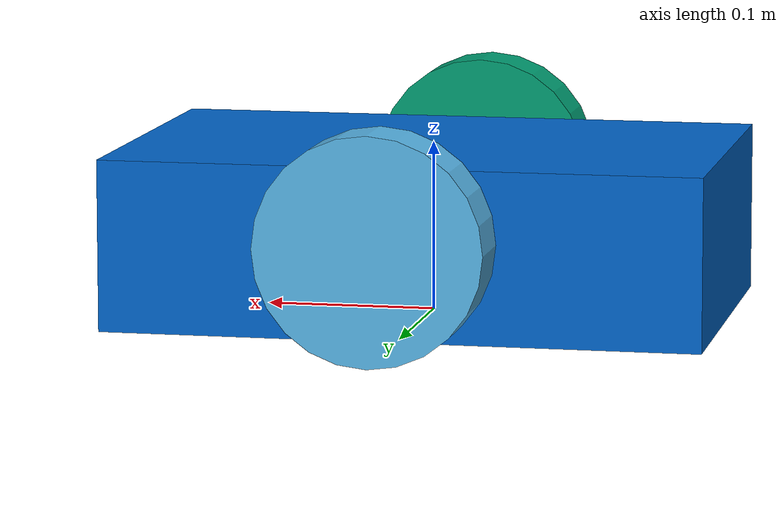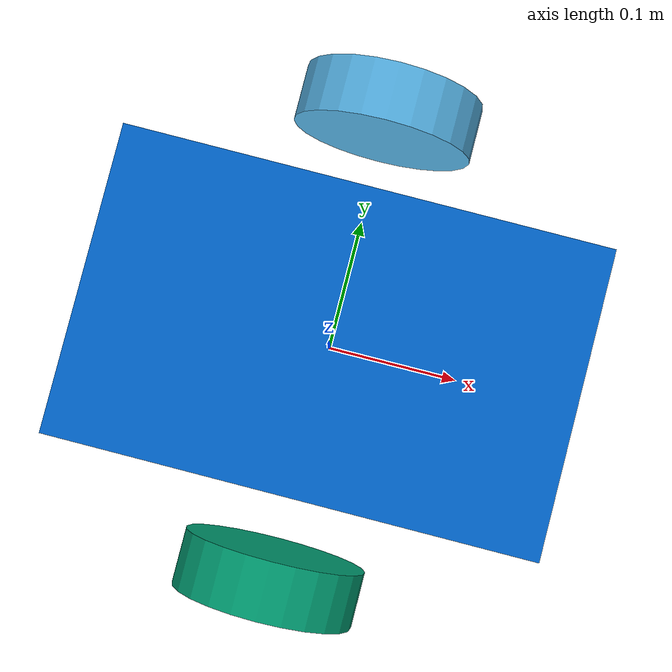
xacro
<?xml version="1.0"?>
<robot xmlns:xacro="http://www.ros.org/wiki/xacro" name="test_dd_bot">

    <xacro:arg name="prefix" default="" />

    <material name="blue">
        <color rgba="0.0 0.4 0.8 1" />
    </material>

    <link name="base_link">
        <visual>
            <origin xyz="0 0 0.05" rpy="0 0 0" />
            <geometry>
                <box size="0.35 0.22 0.10" />
            </geometry>
            <material name="blue" />
        </visual>
        <collision>
            <origin xyz="0 0 0.05" rpy="0 0 0" />
            <geometry>
                <box size="0.35 0.22 0.10" />
            </geometry>
        </collision>
        <inertial>
            <origin xyz="0 0 0.05" rpy="0 0 0" />
            <mass value="2.0" />
            <inertia ixx="0.01" ixy="0" ixz="0" iyy="0.02" iyz="0" izz="0.03" />
        </inertial>
    </link>

    <link name="left_wheel_link">
        <visual>
            <origin xyz="0 0 0" rpy="1.5708 0 0" />
            <geometry>
                <cylinder radius="0.065" length="0.04" />
            </geometry>
        </visual>
        <collision>
            <origin xyz="0 0 0" rpy="1.5708 0 0" />
            <geometry>
                <cylinder radius="0.065" length="0.04" />
            </geometry>
        </collision>
        <inertial>
            <mass value="0.25" />
            <inertia ixx="0.0001" ixy="0" ixz="0" iyy="0.0001" iyz="0" izz="0.0001" />
        </inertial>
    </link>

    <link name="right_wheel_link">
        <visual>
            <origin xyz="0 0 0" rpy="1.5708 0 0" />
            <geometry>
                <cylinder radius="0.065" length="0.04" />
            </geometry>
        </visual>
        <collision>
            <origin xyz="0 0 0" rpy="1.5708 0 0" />
            <geometry>
                <cylinder radius="0.065" length="0.04" />
            </geometry>
        </collision>
        <inertial>
            <mass value="0.25" />
            <inertia ixx="0.0001" ixy="0" ixz="0" iyy="0.0001" iyz="0" izz="0.0001" />
        </inertial>
    </link>

    <joint name="left_wheel_joint" type="continuous">
        <parent link="base_link" />
        <child link="left_wheel_link" />
        <origin xyz="0 0.17 0.065" rpy="0 0 0" />
        <axis xyz="0 1 0" />
    </joint>

    <joint name="right_wheel_joint" type="continuous">
        <parent link="base_link" />
        <child link="right_wheel_link" />
        <origin xyz="0 -0.17 0.065" rpy="0 0 0" />
        <axis xyz="0 1 0" />
    </joint>

    <ros2_control name="TestDDBotHardware" type="system">
        <hardware>
            <plugin>test_dd_bot_hardware/TestDDBotHardware</plugin>

            <param name="serial_port">/dev/ttyACM0</param>
            <param name="baud_rate">9600</param>
            <param name="wheel_radius">0.065</param>
            <param name="wheel_base">0.34</param>
        </hardware>
        <joint name="left_wheel_joint">
            <command_interface name="velocity" />
            <state_interface name="position" />
            <state_interface name="velocity" />
        </joint>
        <joint name="right_wheel_joint">
            <command_interface name="velocity" />
            <state_interface name="position" />
            <state_interface name="velocity" />
        </joint>
    </ros2_control>

</robot>
